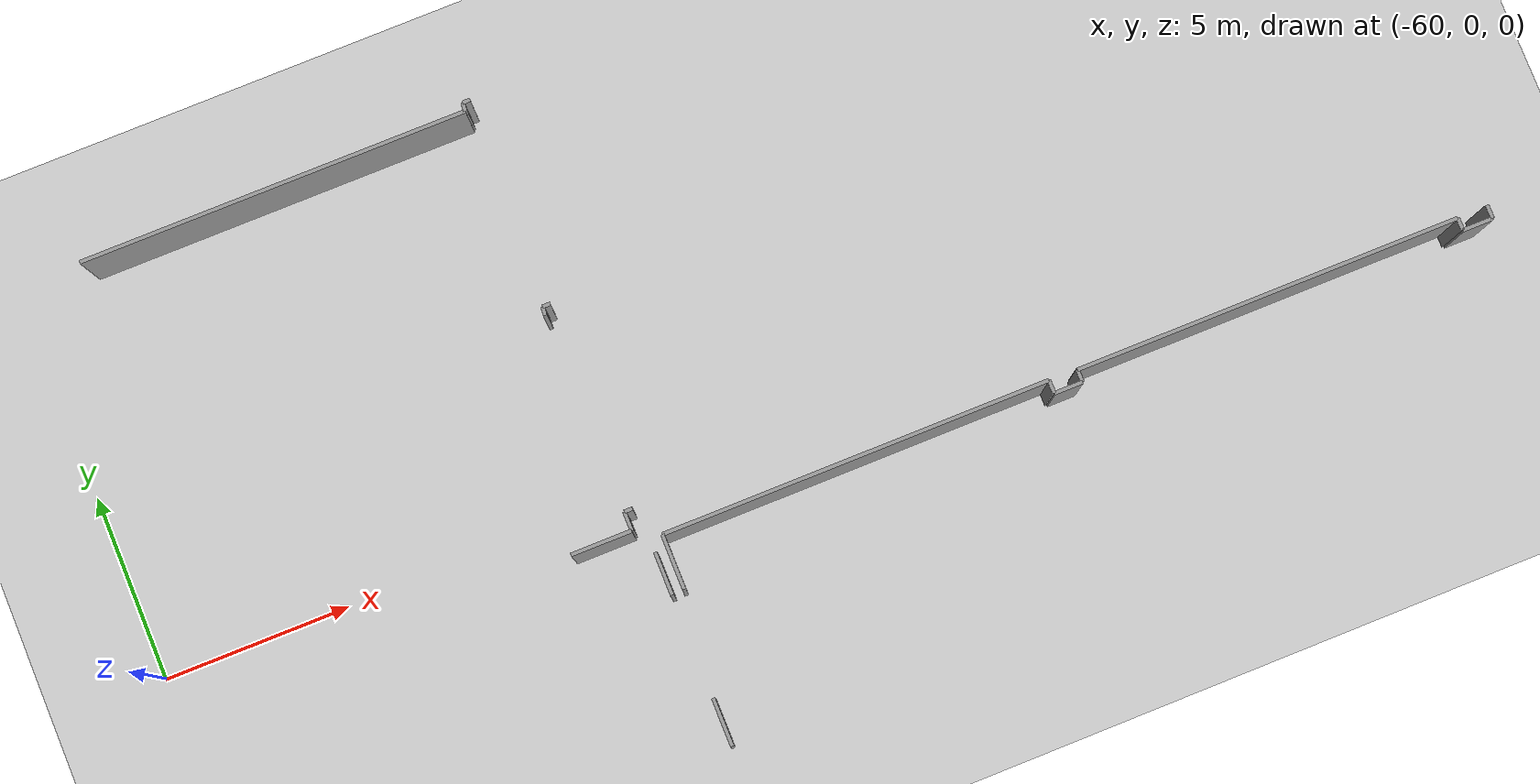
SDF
<sdf version="1.6">
 <world name="default">
  <model name="ground_plane">
   <static>1</static>
   <link name="link">
    <collision name="collision">
     <geometry><plane><normal>0 0 1</normal><size>100 100</size></plane></geometry>
     <surface><friction><ode><mu>100</mu><mu2>50</mu2></ode></friction></surface>
    </collision>
    <visual name="visual">
     <cast_shadows>0</cast_shadows>
     <geometry><plane><normal>0 0 1</normal><size>100 100</size></plane></geometry>
     <material>
      <script><uri>file://media/materials/scripts/gazebo.material</uri><name>Gazebo/Grey</name></script>
     </material>
    </visual>
   </link>
  </model>
  <model name="50015848">
   <static>1</static>
   <link name="Wall_173">
    <collision name="Wall_173_Collision">
     <geometry><box><size>1.15649322228 0.1 2.5</size></box></geometry>
     <pose>0.578246611142 0 1.25 0 0 0</pose>
    </collision>
    <visual name="Wall_173_Visual">
     <pose>0.578246611142 0 1.25 0 0 0</pose>
     <geometry><box><size>1.15649322228 0.1 2.5</size></box></geometry>
     <material>
      <script><uri>file://media/materials/scripts/gazebo.material</uri><name>Gazebo/Grey</name></script>
      <ambient>1 1 1 1</ambient>
     </material>
    </visual>
    <pose>84.6424652234 -45.5926774036 0 0 0 -1.57079632679</pose>
   </link>
   <link name="Wall_174">
    <collision name="Wall_174_Collision">
     <geometry><box><size>1.28665579864 0.1 2.5</size></box></geometry>
     <pose>0.643327899321 0 1.25 0 0 0</pose>
    </collision>
    <visual name="Wall_174_Visual">
     <pose>0.643327899321 0 1.25 0 0 0</pose>
     <geometry><box><size>1.28665579864 0.1 2.5</size></box></geometry>
     <material>
      <script><uri>file://media/materials/scripts/gazebo.material</uri><name>Gazebo/Grey</name></script>
      <ambient>1 1 1 1</ambient>
     </material>
    </visual>
    <pose>84.6424652234 -49.5087187359 0 0 0 -1.57079632679</pose>
   </link>
   <link name="Wall_356">
    <collision name="Wall_356_Collision">
     <geometry><box><size>1.63451718692 0.1 2.5</size></box></geometry>
     <pose>0.817258593458 0 1.25 0 0 0</pose>
    </collision>
    <visual name="Wall_356_Visual">
     <pose>0.817258593458 0 1.25 0 0 0</pose>
     <geometry><box><size>1.63451718692 0.1 2.5</size></box></geometry>
     <material>
      <script><uri>file://media/materials/scripts/gazebo.material</uri><name>Gazebo/Grey</name></script>
      <ambient>1 1 1 1</ambient>
     </material>
    </visual>
    <pose>84.2994246713 -44.8736116309 0 0 0 3.14159265359</pose>
   </link>
   <link name="Wall_363">
    <collision name="Wall_363_Collision">
     <geometry><box><size>0.219982365889 0.1 2.5</size></box></geometry>
     <pose>0.109991182944 0 1.25 0 0 0</pose>
    </collision>
    <visual name="Wall_363_Visual">
     <pose>0.109991182944 0 1.25 0 0 0</pose>
     <geometry><box><size>0.219982365889 0.1 2.5</size></box></geometry>
     <material>
      <script><uri>file://media/materials/scripts/gazebo.material</uri><name>Gazebo/Grey</name></script>
      <ambient>1 1 1 1</ambient>
     </material>
    </visual>
    <pose>84.5188995807 -44.3623492696 0 0 0 3.14159265359</pose>
   </link>
   <link name="Wall_364">
    <collision name="Wall_364_Collision">
     <geometry><box><size>0.511262613161 0.1 2.5</size></box></geometry>
     <pose>0.255631306581 0 1.25 0 0 0</pose>
    </collision>
    <visual name="Wall_364_Visual">
     <pose>0.255631306581 0 1.25 0 0 0</pose>
     <geometry><box><size>0.511262613161 0.1 2.5</size></box></geometry>
     <material>
      <script><uri>file://media/materials/scripts/gazebo.material</uri><name>Gazebo/Grey</name></script>
      <ambient>1 1 1 1</ambient>
     </material>
    </visual>
    <pose>84.2989172148 -44.3623492696 0 0 0 -1.56980377129</pose>
   </link>
   <link name="Wall_371">
    <collision name="Wall_371_Collision">
     <geometry><box><size>0.208818324252 0.1 2.5</size></box></geometry>
     <pose>0.104409162126 0 1.25 0 0 0</pose>
    </collision>
    <visual name="Wall_371_Visual">
     <pose>0.104409162126 0 1.25 0 0 0</pose>
     <geometry><box><size>0.208818324252 0.1 2.5</size></box></geometry>
     <material>
      <script><uri>file://media/materials/scripts/gazebo.material</uri><name>Gazebo/Grey</name></script>
      <ambient>1 1 1 1</ambient>
     </material>
    </visual>
    <pose>84.4980938668 -38.7727166046 0 0 0 3.14159265359</pose>
   </link>
   <link name="Wall_372">
    <collision name="Wall_372_Collision">
     <geometry><box><size>0.231212127996 0.1 2.5</size></box></geometry>
     <pose>0.115606063998 0 1.25 0 0 0</pose>
    </collision>
    <visual name="Wall_372_Visual">
     <pose>0.115606063998 0 1.25 0 0 0</pose>
     <geometry><box><size>0.231212127996 0.1 2.5</size></box></geometry>
     <material>
      <script><uri>file://media/materials/scripts/gazebo.material</uri><name>Gazebo/Grey</name></script>
      <ambient>1 1 1 1</ambient>
     </material>
    </visual>
    <pose>84.2892755425 -38.7727166046 0 0 0 -1.65539568214</pose>
   </link>
   <link name="Wall_373">
    <collision name="Wall_373_Collision">
     <geometry><box><size>10.4350804636 0.1 2.5</size></box></geometry>
     <pose>5.21754023178 0 1.25 0 0 0</pose>
    </collision>
    <visual name="Wall_373_Visual">
     <pose>5.21754023178 0 1.25 0 0 0</pose>
     <geometry><box><size>10.4350804636 0.1 2.5</size></box></geometry>
     <material>
      <script><uri>file://media/materials/scripts/gazebo.material</uri><name>Gazebo/Grey</name></script>
      <ambient>1 1 1 1</ambient>
     </material>
    </visual>
    <pose>84.2989172148 -33.3738875603 0 0 0 3.14159265359</pose>
   </link>
   <link name="Wall_379">
    <collision name="Wall_379_Collision">
     <geometry><box><size>0.206534770281 0.1 2.5</size></box></geometry>
     <pose>0.10326738514 0 1.25 0 0 0</pose>
    </collision>
    <visual name="Wall_379_Visual">
     <pose>0.10326738514 0 1.25 0 0 0</pose>
     <geometry><box><size>0.206534770281 0.1 2.5</size></box></geometry>
     <material>
      <script><uri>file://media/materials/scripts/gazebo.material</uri><name>Gazebo/Grey</name></script>
      <ambient>1 1 1 1</ambient>
     </material>
    </visual>
    <pose>84.5150936574 -33.1473082608 0 0 0 3.14159265359</pose>
   </link>
   <link name="Wall_380">
    <collision name="Wall_380_Collision">
     <geometry><box><size>0.226784348765 0.1 2.5</size></box></geometry>
     <pose>0.113392174383 0 1.25 0 0 0</pose>
    </collision>
    <visual name="Wall_380_Visual">
     <pose>0.113392174383 0 1.25 0 0 0</pose>
     <geometry><box><size>0.226784348765 0.1 2.5</size></box></geometry>
     <material>
      <script><uri>file://media/materials/scripts/gazebo.material</uri><name>Gazebo/Grey</name></script>
      <ambient>1 1 1 1</ambient>
     </material>
    </visual>
    <pose>84.3085588871 -33.1473082608 0 0 0 -1.61332386141</pose>
   </link>
   <link name="Wall_513">
    <collision name="Wall_513_Collision">
     <geometry><box><size>1.478220604 0.1 2.5</size></box></geometry>
     <pose>0.739110302 0 1.25 0 0 0</pose>
    </collision>
    <visual name="Wall_513_Visual">
     <pose>0.739110302 0 1.25 0 0 0</pose>
     <geometry><box><size>1.478220604 0.1 2.5</size></box></geometry>
     <material>
      <script><uri>file://media/materials/scripts/gazebo.material</uri><name>Gazebo/Grey</name></script>
      <ambient>1 1 1 1</ambient>
     </material>
    </visual>
    <pose>84.9723119081 -46.7230366193 0 0 0 1.57079632679</pose>
   </link>
   <link name="Wall_514">
    <collision name="Wall_514_Collision">
     <geometry><box><size>10.448274331 0.1 2.5</size></box></geometry>
     <pose>5.22413716548 0 1.25 0 0 0</pose>
    </collision>
    <visual name="Wall_514_Visual">
     <pose>5.22413716548 0 1.25 0 0 0</pose>
     <geometry><box><size>10.448274331 0.1 2.5</size></box></geometry>
     <material>
      <script><uri>file://media/materials/scripts/gazebo.material</uri><name>Gazebo/Grey</name></script>
      <ambient>1 1 1 1</ambient>
     </material>
    </visual>
    <pose>84.9723119081 -45.2448160153 0 0 0 0.0</pose>
   </link>
   <link name="Wall_515">
    <collision name="Wall_515_Collision">
     <geometry><box><size>0.35674187594 0.1 2.5</size></box></geometry>
     <pose>0.17837093797 0 1.25 0 0 0</pose>
    </collision>
    <visual name="Wall_515_Visual">
     <pose>0.17837093797 0 1.25 0 0 0</pose>
     <geometry><box><size>0.35674187594 0.1 2.5</size></box></geometry>
     <material>
      <script><uri>file://media/materials/scripts/gazebo.material</uri><name>Gazebo/Grey</name></script>
      <ambient>1 1 1 1</ambient>
     </material>
    </visual>
    <pose>95.4205862391 -45.2448160153 0 0 0 -1.57079632679</pose>
   </link>
   <link name="Wall_516">
    <collision name="Wall_516_Collision">
     <geometry><box><size>0.767274134311 0.1 2.5</size></box></geometry>
     <pose>0.383637067156 0 1.25 0 0 0</pose>
    </collision>
    <visual name="Wall_516_Visual">
     <pose>0.383637067156 0 1.25 0 0 0</pose>
     <geometry><box><size>0.767274134311 0.1 2.5</size></box></geometry>
     <material>
      <script><uri>file://media/materials/scripts/gazebo.material</uri><name>Gazebo/Grey</name></script>
      <ambient>1 1 1 1</ambient>
     </material>
    </visual>
    <pose>95.4205862391 -45.6015578913 0 0 0 0.0</pose>
   </link>
   <link name="Wall_517">
    <collision name="Wall_517_Collision">
     <geometry><box><size>0.333652608009 0.1 2.5</size></box></geometry>
     <pose>0.166826304004 0 1.25 0 0 0</pose>
    </collision>
    <visual name="Wall_517_Visual">
     <pose>0.166826304004 0 1.25 0 0 0</pose>
     <geometry><box><size>0.333652608009 0.1 2.5</size></box></geometry>
     <material>
      <script><uri>file://media/materials/scripts/gazebo.material</uri><name>Gazebo/Grey</name></script>
      <ambient>1 1 1 1</ambient>
     </material>
    </visual>
    <pose>96.1878603734 -45.6015578913 0 0 0 1.57079632679</pose>
   </link>
   <link name="Wall_518">
    <collision name="Wall_518_Collision">
     <geometry><box><size>10.3937227639 0.1 2.5</size></box></geometry>
     <pose>5.19686138193 0 1.25 0 0 0</pose>
    </collision>
    <visual name="Wall_518_Visual">
     <pose>5.19686138193 0 1.25 0 0 0</pose>
     <geometry><box><size>10.3937227639 0.1 2.5</size></box></geometry>
     <material>
      <script><uri>file://media/materials/scripts/gazebo.material</uri><name>Gazebo/Grey</name></script>
      <ambient>1 1 1 1</ambient>
     </material>
    </visual>
    <pose>96.1878603734 -45.2679052833 0 0 0 0.0</pose>
   </link>
   <link name="Wall_519">
    <collision name="Wall_519_Collision">
     <geometry><box><size>0.333652608009 0.1 2.5</size></box></geometry>
     <pose>0.166826304004 0 1.25 0 0 0</pose>
    </collision>
    <visual name="Wall_519_Visual">
     <pose>0.166826304004 0 1.25 0 0 0</pose>
     <geometry><box><size>0.333652608009 0.1 2.5</size></box></geometry>
     <material>
      <script><uri>file://media/materials/scripts/gazebo.material</uri><name>Gazebo/Grey</name></script>
      <ambient>1 1 1 1</ambient>
     </material>
    </visual>
    <pose>106.581583137 -45.2679052833 0 0 0 -1.57079632679</pose>
   </link>
   <link name="Wall_520">
    <collision name="Wall_520_Collision">
     <geometry><box><size>0.817258593458 0.1 2.5</size></box></geometry>
     <pose>0.408629296729 0 1.25 0 0 0</pose>
    </collision>
    <visual name="Wall_520_Visual">
     <pose>0.408629296729 0 1.25 0 0 0</pose>
     <geometry><box><size>0.817258593458 0.1 2.5</size></box></geometry>
     <material>
      <script><uri>file://media/materials/scripts/gazebo.material</uri><name>Gazebo/Grey</name></script>
      <ambient>1 1 1 1</ambient>
     </material>
    </visual>
    <pose>106.581583137 -45.6015578913 0 0 0 0.0</pose>
   </link>
   <link name="Wall_521">
    <collision name="Wall_521_Collision">
     <geometry><box><size>0.367144732919 0.1 2.5</size></box></geometry>
     <pose>0.18357236646 0 1.25 0 0 0</pose>
    </collision>
    <visual name="Wall_521_Visual">
     <pose>0.18357236646 0 1.25 0 0 0</pose>
     <geometry><box><size>0.367144732919 0.1 2.5</size></box></geometry>
     <material>
      <script><uri>file://media/materials/scripts/gazebo.material</uri><name>Gazebo/Grey</name></script>
      <ambient>1 1 1 1</ambient>
     </material>
    </visual>
    <pose>107.398841731 -45.6015578913 0 0 0 1.57079632679</pose>
   </link>
   <pose>-131.8 43.7717730528 0 0 0 0</pose>
  </model>
 </world>
</sdf>
